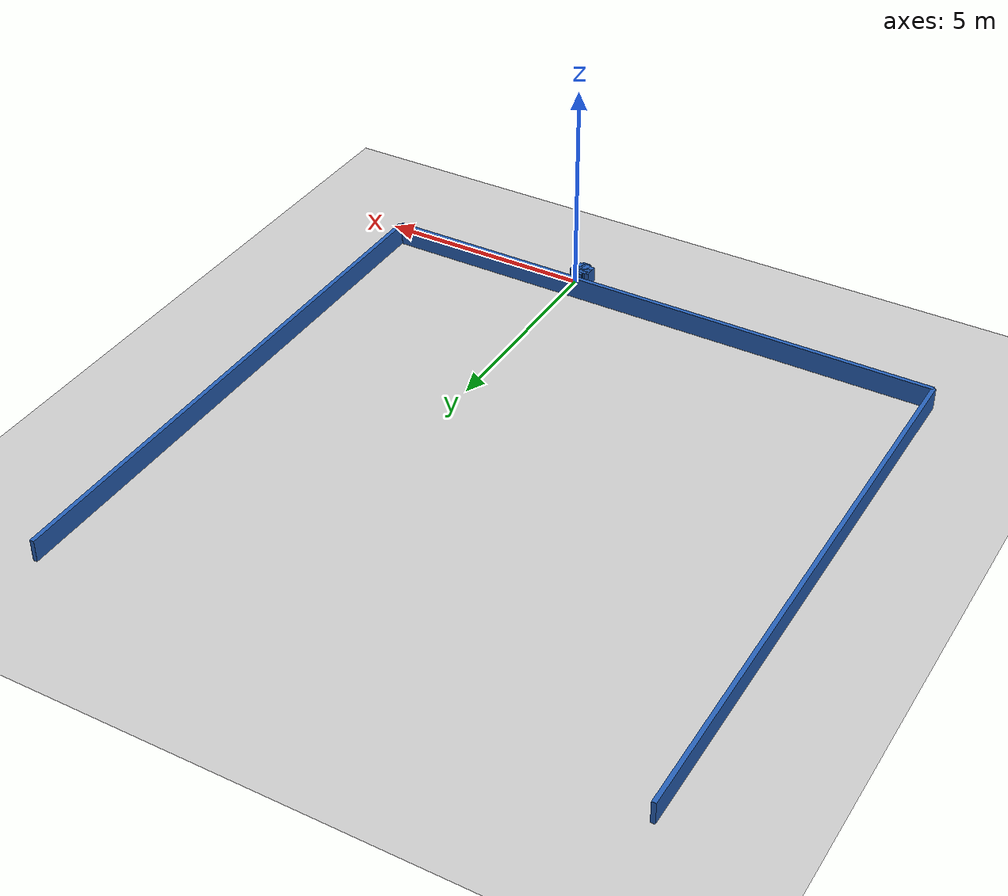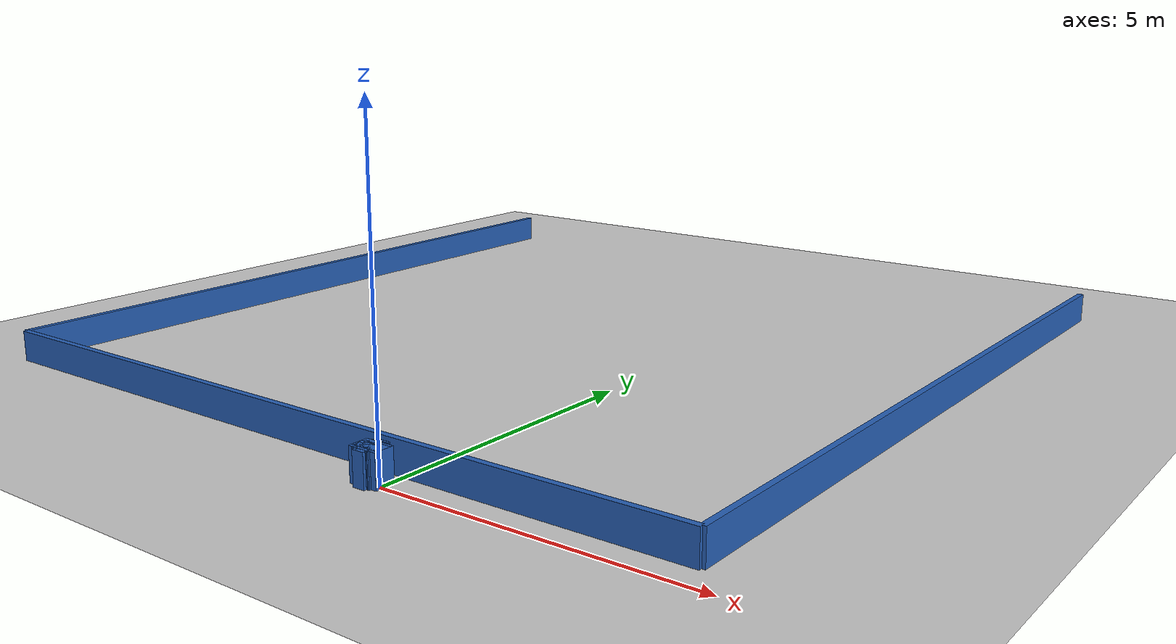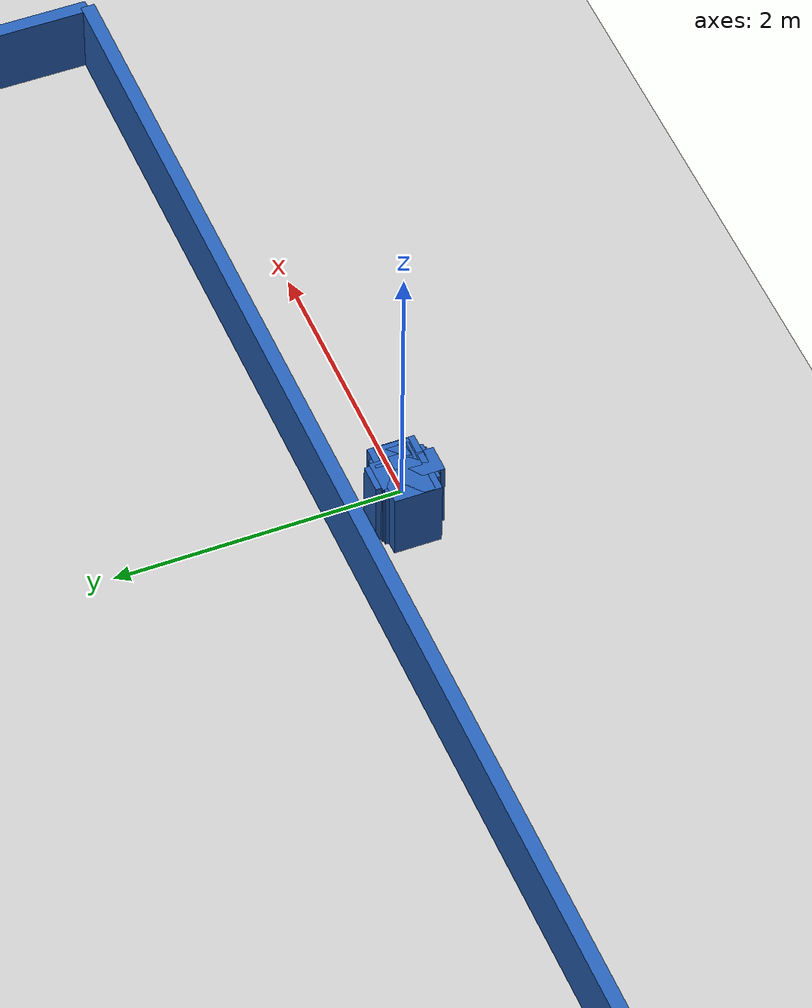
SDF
<?xml version="1.0" ?>
    <sdf version="1.5">
      <world name="default">
        <!-- A global light source -->
        <include>
          <uri>model://sun</uri>
        </include>
        <!-- A ground plane -->
        <include>
          <uri>model://ground_plane</uri>
        </include>

    <model name='libopen_space_final_T2B_140_77'>
      <static>1</static>
      <pose frame=''>-0.225000 0.075000 0.000000 0.000000 0.000000 0.000000</pose>
      <link name='link'>
        <inertial>
          <mass>1</mass>
          <inertia>
            <ixx>0.145833</ixx>
            <ixy>0</ixy>
            <ixz>0</ixz>
            <iyy>0.145833</iyy>
            <iyz>0</iyz>
            <izz>0.125</izz>
          </inertia>
        </inertial>
        <collision name='collision'>
          <geometry>
            <box>
              <size>0.48 0.33 1</size>
            </box>
          </geometry>
          <max_contacts>10</max_contacts>
          <surface>
            <contact>
              <ode/>
            </contact>
            <bounce/>
            <friction>
              <torsional>
                <ode/>
              </torsional>
              <ode/>
            </friction>
          </surface>
        </collision>
        <visual name='visual'>
          <geometry>
            <box>
              <size>0.48 0.33 1</size>
            </box>
          </geometry>
	    <material>
              <ambient>0.152000 0.379000 0.720000 1</ambient>
	      <diffuse>0.152000 0.379000 0.720000 1</diffuse>
          </material>
          <material>
            <script>
              <name>Gazebo/Grey</name>
              <uri>file://media/materials/scripts/gazebo.material</uri>
            </script>
          </material>
        </visual>
        <self_collide>0</self_collide>
        <kinematic>0</kinematic>
        <gravity>1</gravity>
      </link>
      <plugin name='libopen_space_final_T2B_140_77' filename='libopen_space_final_T2B_140_77.so'/>
    </model>

    <model name='libopen_space_final_T2B_67_47'>
      <static>1</static>
      <pose frame=''>-0.225000 0.075000 0.000000 0.000000 0.000000 0.000000</pose>
      <link name='link'>
        <inertial>
          <mass>1</mass>
          <inertia>
            <ixx>0.145833</ixx>
            <ixy>0</ixy>
            <ixz>0</ixz>
            <iyy>0.145833</iyy>
            <iyz>0</iyz>
            <izz>0.125</izz>
          </inertia>
        </inertial>
        <collision name='collision'>
          <geometry>
            <box>
              <size>0.20 0.48 1</size>
            </box>
          </geometry>
          <max_contacts>10</max_contacts>
          <surface>
            <contact>
              <ode/>
            </contact>
            <bounce/>
            <friction>
              <torsional>
                <ode/>
              </torsional>
              <ode/>
            </friction>
          </surface>
        </collision>
        <visual name='visual'>
          <geometry>
            <box>
              <size>0.20 0.48 1</size>
            </box>
          </geometry>
	    <material>
              <ambient>0.152000 0.379000 0.720000 1</ambient>
	      <diffuse>0.152000 0.379000 0.720000 1</diffuse>
          </material>
          <material>
            <script>
              <name>Gazebo/Grey</name>
              <uri>file://media/materials/scripts/gazebo.material</uri>
            </script>
          </material>
        </visual>
        <self_collide>0</self_collide>
        <kinematic>0</kinematic>
        <gravity>1</gravity>
      </link>
      <plugin name='libopen_space_final_T2B_67_47' filename='libopen_space_final_T2B_67_47.so'/>
    </model>

    <model name='libopen_space_final_T2B_83_23'>
      <static>1</static>
      <pose frame=''>-0.225000 0.075000 0.000000 0.000000 0.000000 0.000000</pose>
      <link name='link'>
        <inertial>
          <mass>1</mass>
          <inertia>
            <ixx>0.145833</ixx>
            <ixy>0</ixy>
            <ixz>0</ixz>
            <iyy>0.145833</iyy>
            <iyz>0</iyz>
            <izz>0.125</izz>
          </inertia>
        </inertial>
        <collision name='collision'>
          <geometry>
            <box>
              <size>0.45 0.13 1</size>
            </box>
          </geometry>
          <max_contacts>10</max_contacts>
          <surface>
            <contact>
              <ode/>
            </contact>
            <bounce/>
            <friction>
              <torsional>
                <ode/>
              </torsional>
              <ode/>
            </friction>
          </surface>
        </collision>
        <visual name='visual'>
          <geometry>
            <box>
              <size>0.45 0.13 1</size>
            </box>
          </geometry>
	    <material>
              <ambient>0.152000 0.379000 0.720000 1</ambient>
	      <diffuse>0.152000 0.379000 0.720000 1</diffuse>
          </material>
          <material>
            <script>
              <name>Gazebo/Grey</name>
              <uri>file://media/materials/scripts/gazebo.material</uri>
            </script>
          </material>
        </visual>
        <self_collide>0</self_collide>
        <kinematic>0</kinematic>
        <gravity>1</gravity>
      </link>
      <plugin name='libopen_space_final_T2B_83_23' filename='libopen_space_final_T2B_83_23.so'/>
    </model>

    <model name='libopen_space_final_T2B_111_12'>
      <static>1</static>
      <pose frame=''>-0.225000 0.075000 0.000000 0.000000 0.000000 0.000000</pose>
      <link name='link'>
        <inertial>
          <mass>1</mass>
          <inertia>
            <ixx>0.145833</ixx>
            <ixy>0</ixy>
            <ixz>0</ixz>
            <iyy>0.145833</iyy>
            <iyz>0</iyz>
            <izz>0.125</izz>
          </inertia>
        </inertial>
        <collision name='collision'>
          <geometry>
            <box>
              <size>0.30 0.38 1</size>
            </box>
          </geometry>
          <max_contacts>10</max_contacts>
          <surface>
            <contact>
              <ode/>
            </contact>
            <bounce/>
            <friction>
              <torsional>
                <ode/>
              </torsional>
              <ode/>
            </friction>
          </surface>
        </collision>
        <visual name='visual'>
          <geometry>
            <box>
              <size>0.30 0.38 1</size>
            </box>
          </geometry>
	    <material>
              <ambient>0.152000 0.379000 0.720000 1</ambient>
	      <diffuse>0.152000 0.379000 0.720000 1</diffuse>
          </material>
          <material>
            <script>
              <name>Gazebo/Grey</name>
              <uri>file://media/materials/scripts/gazebo.material</uri>
            </script>
          </material>
        </visual>
        <self_collide>0</self_collide>
        <kinematic>0</kinematic>
        <gravity>1</gravity>
      </link>
      <plugin name='libopen_space_final_T2B_111_12' filename='libopen_space_final_T2B_111_12.so'/>
    </model>

    <model name='libopen_space_final_T2B_112_98'>
      <static>1</static>
      <pose frame=''>-0.225000 0.075000 0.000000 0.000000 0.000000 0.000000</pose>
      <link name='link'>
        <inertial>
          <mass>1</mass>
          <inertia>
            <ixx>0.145833</ixx>
            <ixy>0</ixy>
            <ixz>0</ixz>
            <iyy>0.145833</iyy>
            <iyz>0</iyz>
            <izz>0.125</izz>
          </inertia>
        </inertial>
        <collision name='collision'>
          <geometry>
            <box>
              <size>0.41 0.18 1</size>
            </box>
          </geometry>
          <max_contacts>10</max_contacts>
          <surface>
            <contact>
              <ode/>
            </contact>
            <bounce/>
            <friction>
              <torsional>
                <ode/>
              </torsional>
              <ode/>
            </friction>
          </surface>
        </collision>
        <visual name='visual'>
          <geometry>
            <box>
              <size>0.41 0.18 1</size>
            </box>
          </geometry>
	    <material>
              <ambient>0.152000 0.379000 0.720000 1</ambient>
	      <diffuse>0.152000 0.379000 0.720000 1</diffuse>
          </material>
          <material>
            <script>
              <name>Gazebo/Grey</name>
              <uri>file://media/materials/scripts/gazebo.material</uri>
            </script>
          </material>
        </visual>
        <self_collide>0</self_collide>
        <kinematic>0</kinematic>
        <gravity>1</gravity>
      </link>
      <plugin name='libopen_space_final_T2B_112_98' filename='libopen_space_final_T2B_112_98.so'/>
    </model>

    <model name='libopen_space_final_T2B_64_52'>
      <static>1</static>
      <pose frame=''>-0.225000 0.075000 0.000000 0.000000 0.000000 0.000000</pose>
      <link name='link'>
        <inertial>
          <mass>1</mass>
          <inertia>
            <ixx>0.145833</ixx>
            <ixy>0</ixy>
            <ixz>0</ixz>
            <iyy>0.145833</iyy>
            <iyz>0</iyz>
            <izz>0.125</izz>
          </inertia>
        </inertial>
        <collision name='collision'>
          <geometry>
            <box>
              <size>0.40 0.22 1</size>
            </box>
          </geometry>
          <max_contacts>10</max_contacts>
          <surface>
            <contact>
              <ode/>
            </contact>
            <bounce/>
            <friction>
              <torsional>
                <ode/>
              </torsional>
              <ode/>
            </friction>
          </surface>
        </collision>
        <visual name='visual'>
          <geometry>
            <box>
              <size>0.40 0.22 1</size>
            </box>
          </geometry>
	    <material>
              <ambient>0.152000 0.379000 0.720000 1</ambient>
	      <diffuse>0.152000 0.379000 0.720000 1</diffuse>
          </material>
          <material>
            <script>
              <name>Gazebo/Grey</name>
              <uri>file://media/materials/scripts/gazebo.material</uri>
            </script>
          </material>
        </visual>
        <self_collide>0</self_collide>
        <kinematic>0</kinematic>
        <gravity>1</gravity>
      </link>
      <plugin name='libopen_space_final_T2B_64_52' filename='libopen_space_final_T2B_64_52.so'/>
    </model>

    <model name='libopen_space_final_T2B_122_30'>
      <static>1</static>
      <pose frame=''>-0.225000 0.075000 0.000000 0.000000 0.000000 0.000000</pose>
      <link name='link'>
        <inertial>
          <mass>1</mass>
          <inertia>
            <ixx>0.145833</ixx>
            <ixy>0</ixy>
            <ixz>0</ixz>
            <iyy>0.145833</iyy>
            <iyz>0</iyz>
            <izz>0.125</izz>
          </inertia>
        </inertial>
        <collision name='collision'>
          <geometry>
            <box>
              <size>0.26 0.13 1</size>
            </box>
          </geometry>
          <max_contacts>10</max_contacts>
          <surface>
            <contact>
              <ode/>
            </contact>
            <bounce/>
            <friction>
              <torsional>
                <ode/>
              </torsional>
              <ode/>
            </friction>
          </surface>
        </collision>
        <visual name='visual'>
          <geometry>
            <box>
              <size>0.26 0.13 1</size>
            </box>
          </geometry>
	    <material>
              <ambient>0.152000 0.379000 0.720000 1</ambient>
	      <diffuse>0.152000 0.379000 0.720000 1</diffuse>
          </material>
          <material>
            <script>
              <name>Gazebo/Grey</name>
              <uri>file://media/materials/scripts/gazebo.material</uri>
            </script>
          </material>
        </visual>
        <self_collide>0</self_collide>
        <kinematic>0</kinematic>
        <gravity>1</gravity>
      </link>
      <plugin name='libopen_space_final_T2B_122_30' filename='libopen_space_final_T2B_122_30.so'/>
    </model>

    <model name='libopen_space_final_T2B_99_64'>
      <static>1</static>
      <pose frame=''>-0.225000 0.075000 0.000000 0.000000 0.000000 0.000000</pose>
      <link name='link'>
        <inertial>
          <mass>1</mass>
          <inertia>
            <ixx>0.145833</ixx>
            <ixy>0</ixy>
            <ixz>0</ixz>
            <iyy>0.145833</iyy>
            <iyz>0</iyz>
            <izz>0.125</izz>
          </inertia>
        </inertial>
        <collision name='collision'>
          <geometry>
            <box>
              <size>0.24 0.40 1</size>
            </box>
          </geometry>
          <max_contacts>10</max_contacts>
          <surface>
            <contact>
              <ode/>
            </contact>
            <bounce/>
            <friction>
              <torsional>
                <ode/>
              </torsional>
              <ode/>
            </friction>
          </surface>
        </collision>
        <visual name='visual'>
          <geometry>
            <box>
              <size>0.24 0.40 1</size>
            </box>
          </geometry>
	    <material>
              <ambient>0.152000 0.379000 0.720000 1</ambient>
	      <diffuse>0.152000 0.379000 0.720000 1</diffuse>
          </material>
          <material>
            <script>
              <name>Gazebo/Grey</name>
              <uri>file://media/materials/scripts/gazebo.material</uri>
            </script>
          </material>
        </visual>
        <self_collide>0</self_collide>
        <kinematic>0</kinematic>
        <gravity>1</gravity>
      </link>
      <plugin name='libopen_space_final_T2B_99_64' filename='libopen_space_final_T2B_99_64.so'/>
    </model>

    <model name='libopen_space_final_T2B_120_90'>
      <static>1</static>
      <pose frame=''>-0.225000 0.075000 0.000000 0.000000 0.000000 0.000000</pose>
      <link name='link'>
        <inertial>
          <mass>1</mass>
          <inertia>
            <ixx>0.145833</ixx>
            <ixy>0</ixy>
            <ixz>0</ixz>
            <iyy>0.145833</iyy>
            <iyz>0</iyz>
            <izz>0.125</izz>
          </inertia>
        </inertial>
        <collision name='collision'>
          <geometry>
            <box>
              <size>0.47 0.24 1</size>
            </box>
          </geometry>
          <max_contacts>10</max_contacts>
          <surface>
            <contact>
              <ode/>
            </contact>
            <bounce/>
            <friction>
              <torsional>
                <ode/>
              </torsional>
              <ode/>
            </friction>
          </surface>
        </collision>
        <visual name='visual'>
          <geometry>
            <box>
              <size>0.47 0.24 1</size>
            </box>
          </geometry>
	    <material>
              <ambient>0.152000 0.379000 0.720000 1</ambient>
	      <diffuse>0.152000 0.379000 0.720000 1</diffuse>
          </material>
          <material>
            <script>
              <name>Gazebo/Grey</name>
              <uri>file://media/materials/scripts/gazebo.material</uri>
            </script>
          </material>
        </visual>
        <self_collide>0</self_collide>
        <kinematic>0</kinematic>
        <gravity>1</gravity>
      </link>
      <plugin name='libopen_space_final_T2B_120_90' filename='libopen_space_final_T2B_120_90.so'/>
    </model>

    <model name='libopen_space_final_T2B_120_45'>
      <static>1</static>
      <pose frame=''>-0.225000 0.075000 0.000000 0.000000 0.000000 0.000000</pose>
      <link name='link'>
        <inertial>
          <mass>1</mass>
          <inertia>
            <ixx>0.145833</ixx>
            <ixy>0</ixy>
            <ixz>0</ixz>
            <iyy>0.145833</iyy>
            <iyz>0</iyz>
            <izz>0.125</izz>
          </inertia>
        </inertial>
        <collision name='collision'>
          <geometry>
            <box>
              <size>0.19 0.34 1</size>
            </box>
          </geometry>
          <max_contacts>10</max_contacts>
          <surface>
            <contact>
              <ode/>
            </contact>
            <bounce/>
            <friction>
              <torsional>
                <ode/>
              </torsional>
              <ode/>
            </friction>
          </surface>
        </collision>
        <visual name='visual'>
          <geometry>
            <box>
              <size>0.19 0.34 1</size>
            </box>
          </geometry>
	    <material>
              <ambient>0.152000 0.379000 0.720000 1</ambient>
	      <diffuse>0.152000 0.379000 0.720000 1</diffuse>
          </material>
          <material>
            <script>
              <name>Gazebo/Grey</name>
              <uri>file://media/materials/scripts/gazebo.material</uri>
            </script>
          </material>
        </visual>
        <self_collide>0</self_collide>
        <kinematic>0</kinematic>
        <gravity>1</gravity>
      </link>
      <plugin name='libopen_space_final_T2B_120_45' filename='libopen_space_final_T2B_120_45.so'/>
    </model>

        <model name='bottom_wall'>
          <static>1</static>
          <pose frame=''>-2.25 0.5 0.000000 0.000000 0.000000 1.57079632</pose>
          <link name='link'>
            <inertial>
            <mass>1</mass>
            <inertia>
              <ixx>0.145833</ixx>
              <ixy>0</ixy>
              <ixz>0</ixz>
              <iyy>0.145833</iyy>
              <iyz>0</iyz>
              <izz>0.125</izz>
            </inertia>
            </inertial>
            <collision name='collision'>
            <geometry>
              <box>
              <size>0.1 13.5 1</size>
              </box>
            </geometry>
            <max_contacts>10</max_contacts>
            <surface>
              <contact>
              <ode/>
              </contact>
              <bounce/>
              <friction>
              <torsional>
                <ode/>
              </torsional>
              <ode/>
              </friction>
            </surface>
            </collision>
            <visual name='visual'>
            <geometry>
              <box>
              <size>0.1 13.5 1</size>
              </box>
            </geometry>
            <material>
              <ambient>0.152000 0.379000 0.720000 1</ambient>
            <diffuse>0.152000 0.379000 0.720000 1</diffuse>
            </material>
            <material>
              <script>
              <name>Gazebo/Grey</name>
              <uri>file://media/materials/scripts/gazebo.material</uri>
              </script>
            </material>
            </visual>
            <self_collide>0</self_collide>
            <kinematic>0</kinematic>
            <gravity>1</gravity>
          </link>
        </model>

        <model name='left_wall'>
          <static>1</static>
          <pose frame=''>-9 7.25 0.000000 0.000000 0.000000 0.000000</pose>
          <link name='link'>
            <inertial>
            <mass>1</mass>
            <inertia>
              <ixx>0.145833</ixx>
              <ixy>0</ixy>
              <ixz>0</ixz>
              <iyy>0.145833</iyy>
              <iyz>0</iyz>
              <izz>0.125</izz>
            </inertia>
            </inertial>
            <collision name='collision'>
            <geometry>
              <box>
              <size>0.1 13.5 1</size>
              </box>
            </geometry>
            <max_contacts>10</max_contacts>
            <surface>
              <contact>
              <ode/>
              </contact>
              <bounce/>
              <friction>
              <torsional>
                <ode/>
              </torsional>
              <ode/>
              </friction>
            </surface>
            </collision>
            <visual name='visual'>
            <geometry>
              <box>
              <size>0.1 13.5 1</size>
              </box>
            </geometry>
            <material>
              <ambient>0.152000 0.379000 0.720000 1</ambient>
            <diffuse>0.152000 0.379000 0.720000 1</diffuse>
            </material>
            <material>
              <script>
              <name>Gazebo/Grey</name>
              <uri>file://media/materials/scripts/gazebo.material</uri>
              </script>
            </material>
            </visual>
            <self_collide>0</self_collide>
            <kinematic>0</kinematic>
            <gravity>1</gravity>
          </link>
        </model>

        <model name='right_wall'>
          <static>1</static>
          <pose frame=''>4.5 7.25 0.000000 0.000000 0.000000 0.000000</pose>
          <link name='link'>
            <inertial>
            <mass>1</mass>
            <inertia>
              <ixx>0.145833</ixx>
              <ixy>0</ixy>
              <ixz>0</ixz>
              <iyy>0.145833</iyy>
              <iyz>0</iyz>
              <izz>0.125</izz>
            </inertia>
            </inertial>
            <collision name='collision'>
            <geometry>
              <box>
              <size>0.1 13.5 1</size>
              </box>
            </geometry>
            <max_contacts>10</max_contacts>
            <surface>
              <contact>
              <ode/>
              </contact>
              <bounce/>
              <friction>
              <torsional>
                <ode/>
              </torsional>
              <ode/>
              </friction>
            </surface>
            </collision>
            <visual name='visual'>
            <geometry>
              <box>
              <size>0.1 13.5 1</size>
              </box>
            </geometry>
            <material>
              <ambient>0.152000 0.379000 0.720000 1</ambient>
            <diffuse>0.152000 0.379000 0.720000 1</diffuse>
            </material>
            <material>
              <script>
              <name>Gazebo/Grey</name>
              <uri>file://media/materials/scripts/gazebo.material</uri>
              </script>
            </material>
            </visual>
            <self_collide>0</self_collide>
            <kinematic>0</kinematic>
            <gravity>1</gravity>
          </link>
        </model>

      </world>
    </sdf>"
